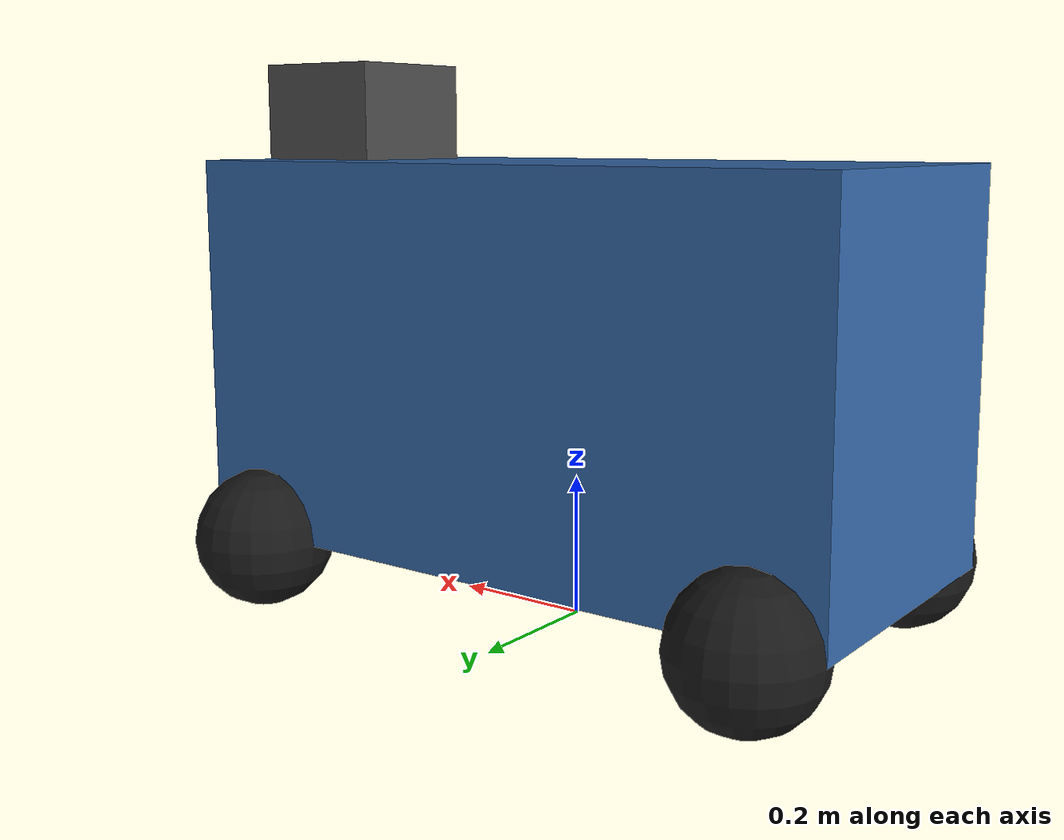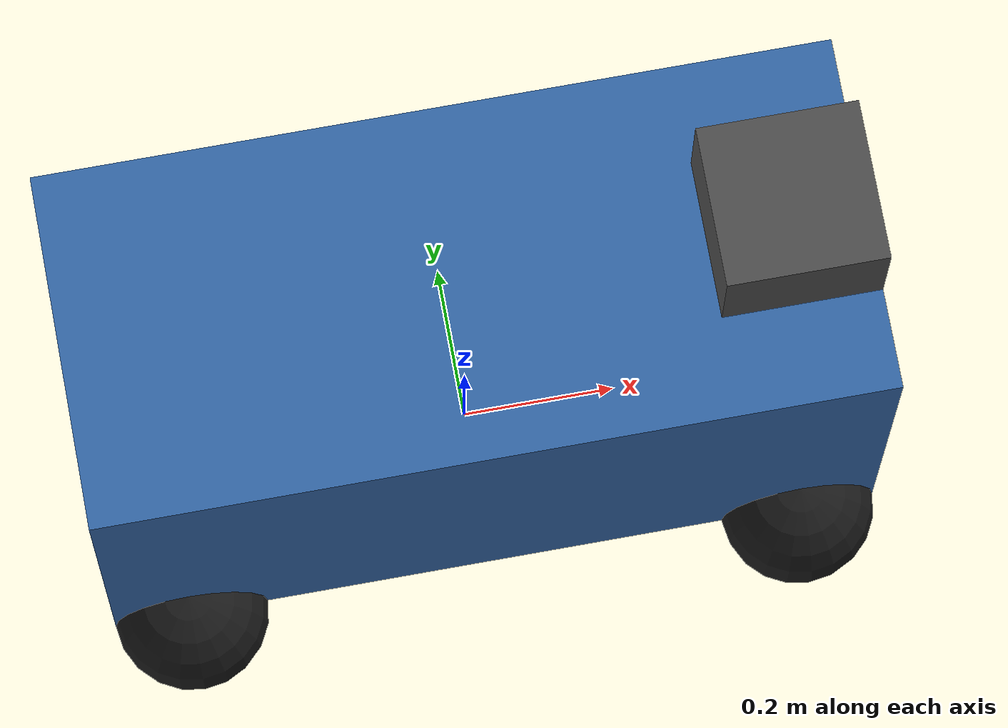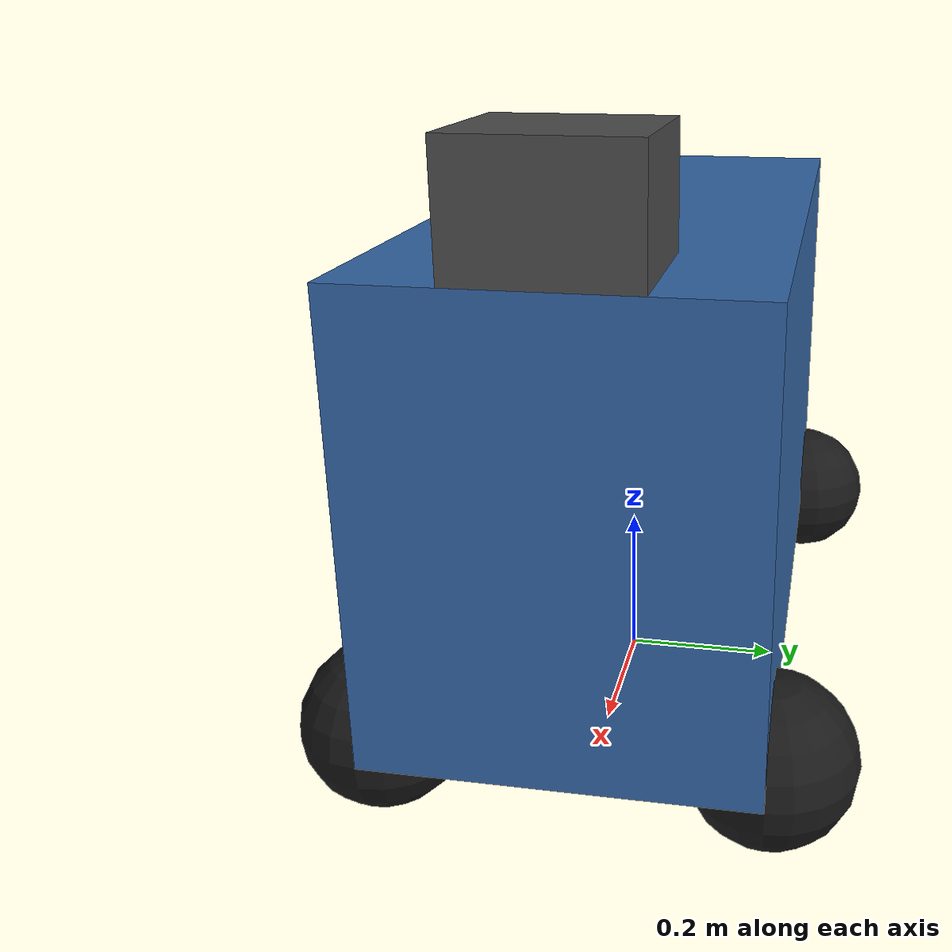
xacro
<?xml version="1.0"?>
<robot name="mobile_base" xmlns:xacro="http://www.ros.org/wiki/xacro">

  <xacro:include filename="mobile_base_macro.urdf.xacro"/>

  <xacro:mobile_base prefix=""/>

  <!-- Кинематический drive через встроенные плагины Gazebo. -->
  <xacro:velocity_control_plugin
      prefix=""
      topic="cmd_vel"
      odom_topic="odom"
      tf_topic="tf"
      frame_id="odom"
      child_frame_id="base_footprint"/>

</robot>

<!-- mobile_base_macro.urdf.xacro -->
<robot xmlns:xacro="http://www.ros.org/wiki/xacro">

  <!-- ====== Параметры по умолчанию ====== -->
  <xacro:property name="default_base_l"        value="1.00"/>
  <xacro:property name="default_base_w"        value="0.45"/>
  <xacro:property name="default_base_h"        value="0.545"/>
  <xacro:property name="default_base_mass"     value="30.0"/>
  <xacro:property name="default_wheel_radius"  value="0.10"/>
  <xacro:property name="default_wheel_thick"   value="0.050"/>
  <xacro:property name="default_wheel_mass"    value="1.0"/>
  <xacro:property name="default_wheel_x"       value="${default_base_l / 2.0 - default_wheel_radius}"/>
  <xacro:property name="default_wheel_y"       value="${default_base_w / 2.0}"/>
  <xacro:property name="default_mount_height"  value="0.14"/>
  <xacro:property name="default_mount_lingth"  value="0.2"/>
  <xacro:property name="default_mount_x"       value="${(default_base_l - default_mount_lingth) / 2.0}"/>

  <!-- ====== Локальный макрос: кастер-шарик с нулевым трением ====== -->

  <xacro:macro name="caster_ball" params="prefix name xyz mass radius">
    <xacro:property name="ball_inertia" value="${ (2/5) * mass * radius * radius }"/>
    <link name="${prefix}caster_${name}">
      <visual>
        <origin xyz="0 0 0" rpy="0 0 0"/>
        <geometry>
          <sphere radius="${radius}"/>
        </geometry>
        <material name="${prefix}wheel_mat">
          <color rgba="0.10 0.10 0.10 1.0"/>
        </material>
      </visual>

      <collision>
        <geometry>
          <sphere radius="${radius}"/>
        </geometry>
        <surface>
          <friction>
            <ode>
              <mu>0.00001</mu>
              <mu2>0.00001</mu2>
            </ode>
          </friction>
        </surface>
      </collision>
      <inertial>
        <mass value="${mass}"/>
        <inertia ixx="${ball_inertia}" iyy="${ball_inertia}" izz="${ball_inertia}" ixy="0" ixz="0" iyz="0"/>
      </inertial>
    </link>
    <joint name="${prefix}caster_${name}_joint" type="fixed">
      <parent link="${prefix}base_link"/>
      <child  link="${prefix}caster_${name}"/>
      <origin xyz="${xyz}"/>
    </joint>
    <gazebo reference="${prefix}caster_${name}">
      <visual>
        <material>
          <ambient>0.05 0.05 0.05 1</ambient>
          <diffuse>0.10 0.10 0.10 1</diffuse>
        </material>
      </visual>
      <mu1>0.00001</mu1>
      <mu2>0.00001</mu2>
    </gazebo>
  </xacro:macro>

  <!-- ====== ОСНОВНОЙ МАКРОС ПЛАТФОРМЫ ====== -->
  <xacro:macro name="mobile_base"
               params="prefix:=''
                       base_l:=${default_base_l}
                       base_w:=${default_base_w}
                       base_h:=${default_base_h}
                       base_mass:=${default_base_mass}
                       wheel_radius:=${default_wheel_radius}
                       wheel_thick:=${default_wheel_thick}
                       wheel_mass:=${default_wheel_mass}
                       wheel_x:=${default_wheel_x}
                       wheel_y:=${default_wheel_y}
                       mount_height:=${default_mount_height}">

    <!-- ================== base_footprint (на полу) ================== -->
    <link name="${prefix}base_footprint"/>

    <joint name="${prefix}base_footprint_joint" type="fixed">
      <parent link="${prefix}base_footprint"/>
      <child  link="${prefix}base_link"/>
      <origin xyz="0 0 ${wheel_radius + base_h/2.0}" rpy="0 0 0"/>
    </joint>

    <!-- ================== base_link (корпус) ================== -->
    <link name="${prefix}base_link">
      <visual>
        <origin xyz="0 0 0" rpy="0 0 0"/>
        <geometry>
          <box size="${base_l} ${base_w} ${base_h}"/>
        </geometry>
        <material name="${prefix}base_mat">
          <color rgba="0.20 0.40 0.65 1.0"/>
        </material>
      </visual>
      <collision>
        <origin xyz="0 0 0" rpy="0 0 0"/>
        <geometry>
          <box size="${base_l} ${base_w} ${base_h}"/>
        </geometry>
      </collision>
      <inertial>
        <origin xyz="0 0 0" rpy="0 0 0"/>
        <mass value="${base_mass}"/>
        <inertia
          ixx="${base_mass*(base_w*base_w + base_h*base_h)/12.0}"
          iyy="${base_mass*(base_l*base_l + base_h*base_h)/12.0}"
          izz="${base_mass*(base_l*base_l + base_w*base_w)/12.0}"
          ixy="0" ixz="0" iyz="0"/>
      </inertial>
    </link>

    <gazebo reference="${prefix}base_link">
      <!-- Низкое трение корпуса по самому себе - на случай, если уголок
           коснётся земли при наклоне. -->
      <mu1>0.1</mu1>
      <mu2>0.1</mu2>
      <visual>
        <material>
          <diffuse>0.20 0.40 0.65 1</diffuse>
          <specular>0.10 0.10 0.10 1</specular>
        </material>
      </visual>
    </gazebo>

    <!-- ================== z1_mount: площадка под Z1 ================== -->
    <link name="${prefix}z1_mount">
      <visual>
        <origin xyz="0 0 0" rpy="0 0 0"/>
        <geometry>
          <box size="0.20 0.20 ${mount_height}"/>
        </geometry>
        <material name="${prefix}mount_mat">
          <color rgba="0.30 0.30 0.30 1.0"/>
        </material>
      </visual>
      <collision>
        <origin xyz="0 0 0" rpy="0 0 0"/>
        <geometry>
          <box size="0.20 0.20 ${mount_height}"/>
        </geometry>
      </collision>
      <inertial>
        <mass value="0.5"/>
        <inertia ixx="0.002" iyy="0.002" izz="0.002" ixy="0" ixz="0" iyz="0"/>
      </inertial>
    </link>

    <joint name="${prefix}z1_mount_joint" type="fixed">
      <parent link="${prefix}base_link"/>
      <child  link="${prefix}z1_mount"/>
      <origin xyz="${default_mount_x} 0 ${base_h/2.0 + mount_height/2.0}" rpy="0 0 0"/>
    </joint>

    <!-- ================== 4 ВИЗУАЛЬНЫХ колеса ================== -->
    <xacro:property name="wheel_z_local" value="${-base_h/2.0}"/>

    <!-- ================== 3 кастера-шарика ================== -->

    <xacro:caster_ball prefix="${prefix}" name="fl"
                       xyz="${ wheel_x}  ${ wheel_y} ${-base_h / 2.0}"
                       mass="${wheel_mass}" radius="${wheel_radius}"/>
    <xacro:caster_ball prefix="${prefix}" name="fr"
                       xyz="${ wheel_x} ${-wheel_y} ${-base_h / 2.0}"
                       mass="${wheel_mass}" radius="${wheel_radius}"/>

    <xacro:caster_ball prefix="${prefix}" name="rl"
                       xyz="${-wheel_x}  ${ wheel_y} ${-base_h / 2.0}"
                       mass="${wheel_mass}" radius="${wheel_radius}"/>
    <xacro:caster_ball prefix="${prefix}" name="rr"
                       xyz="${-wheel_x} ${-wheel_y} ${-base_h / 2.0}"
                       mass="${wheel_mass}" radius="${wheel_radius}"/>

  </xacro:macro>

  <xacro:macro name="velocity_control_plugin"
               params="prefix:=''
                       topic:='cmd_vel'
                       odom_topic:='odom'
                       tf_topic:='tf'
                       frame_id:='odom'
                       child_frame_id:='base_footprint'
                       odom_pub_frequency:='50'">
    <gazebo>
      <!-- 1. VelocityControl: cmd_vel напрямую в скорость base_link -->
      <plugin filename="gz-sim-velocity-control-system"
              name="gz::sim::systems::VelocityControl">
        <topic>${topic}</topic>
      </plugin>

      <!-- 2. OdometryPublisher: реальная поза base_link -> /odom + TF -->
      <plugin filename="gz-sim-odometry-publisher-system"
              name="gz::sim::systems::OdometryPublisher">
        <odom_frame>${frame_id}</odom_frame>
        <robot_base_frame>${prefix}base_link</robot_base_frame>
        <odom_publish_frequency>${odom_pub_frequency}</odom_publish_frequency>
        <odom_topic>${odom_topic}</odom_topic>
        <tf_topic>${tf_topic}</tf_topic>
        <dimensions>3</dimensions>
      </plugin>
    </gazebo>
  </xacro:macro>

</robot>
